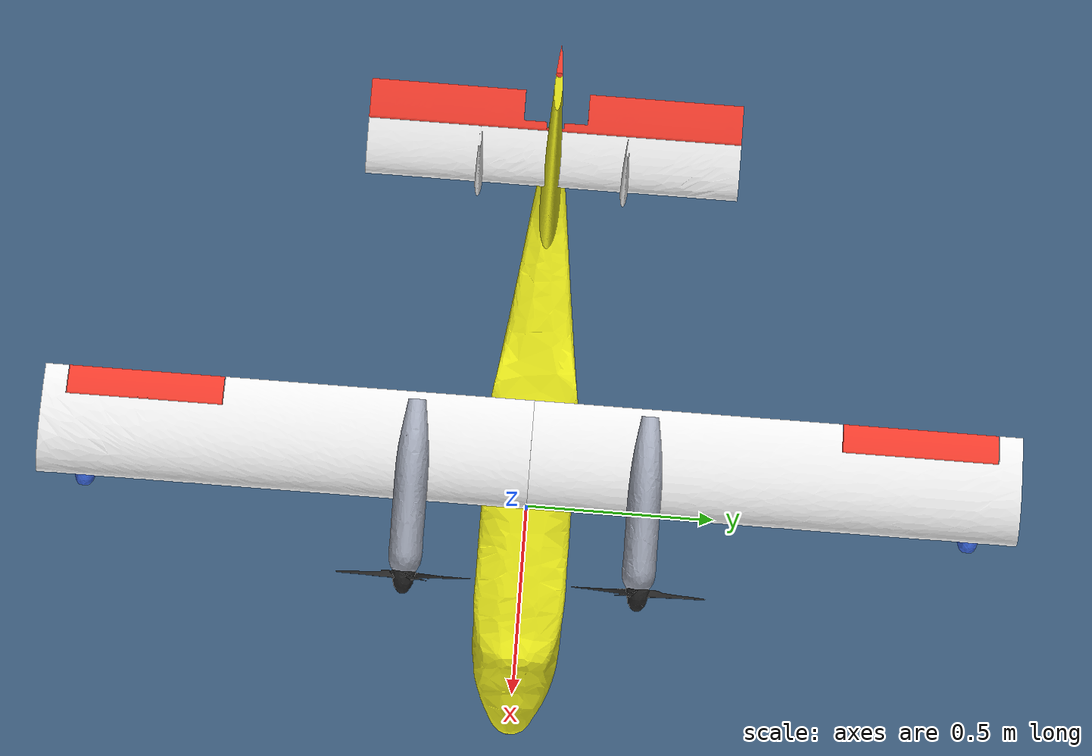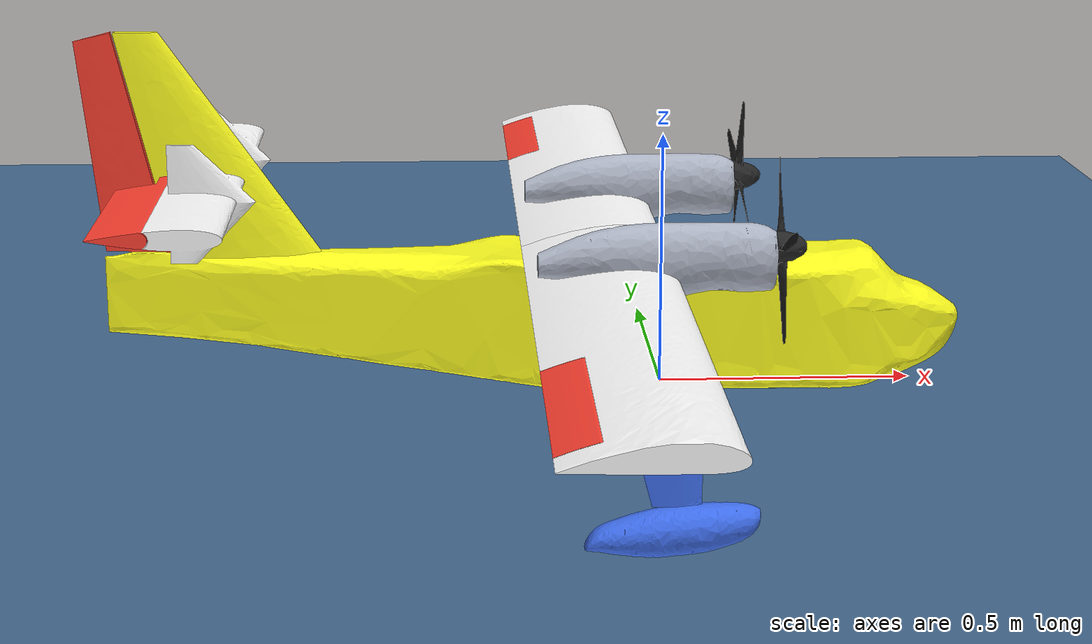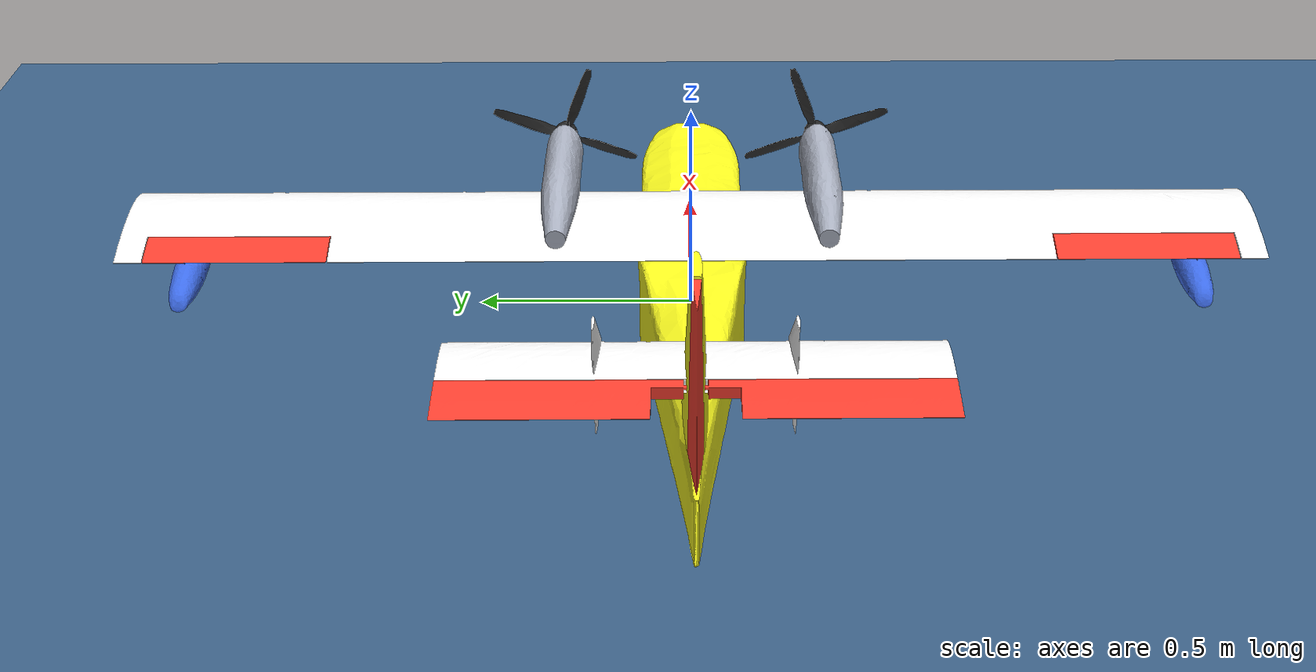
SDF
<?xml version="1.0"?>
<sdf version="1.9">
  <world name="water_cl415">
    <physics name="1ms" type="dart">
      <max_step_size>0.001</max_step_size>
      <real_time_factor>1.0</real_time_factor>
    </physics>
    <gravity>0 0 -9.81</gravity>
    <wind>
      <linear_velocity>0 0 0</linear_velocity>
    </wind>

    <plugin filename="gz-sim-physics-system" name="gz::sim::systems::Physics"/>
    <plugin filename="gz-sim-user-commands-system" name="gz::sim::systems::UserCommands"/>
    <plugin filename="gz-sim-scene-broadcaster-system" name="gz::sim::systems::SceneBroadcaster"/>
    <plugin filename="gz-sim-imu-system" name="gz::sim::systems::Imu"/>
    <plugin filename="gz-sim-buoyancy-system" name="gz::sim::systems::Buoyancy">
      <graded_buoyancy>
        <default_density>1000</default_density>
        <density_change>
          <above_depth>0</above_depth>
          <density>1.225</density>
        </density_change>
      </graded_buoyancy>
    </plugin>

    <scene>
      <ambient>0.6 0.6 0.6 1</ambient>
      <background>0.7 0.8 0.95 1</background>
    </scene>

    <light type="directional" name="sun">
      <cast_shadows>true</cast_shadows>
      <pose>0 0 30 0 0 0</pose>
      <diffuse>0.9 0.9 0.9 1</diffuse>
      <specular>0.2 0.2 0.2 1</specular>
      <direction>-0.4 0.2 -0.9</direction>
    </light>

    <!-- visual only: the water itself is the buoyancy system -->
    <model name="water_surface">
      <static>true</static>
      <pose>0 0 -0.002 0 0 0</pose>
      <link name="link">
        <visual name="surface">
          <geometry>
            <box><size>200 200 0.004</size></box>
          </geometry>
          <material>
            <ambient>0.05 0.25 0.45 1</ambient>
            <diffuse>0.05 0.3 0.55 1</diffuse>
          </material>
          <transparency>0.4</transparency>
        </visual>
      </link>
    </model>
    <include>
      <uri>model://cl415_full</uri>
      <name>cl415</name>
      <pose>0 0 0.29 0 0 0</pose>
    </include>
  </world>
</sdf>

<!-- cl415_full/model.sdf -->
<sdf version='1.11'>
  <model name='cl415'>
    <link name='base_link'>
      <inertial>
        <pose>-0.068479471323888638 1.157110930130461e-06 -0.1051177703273083 0 0 0</pose>
        <mass>10.234999999999999</mass>
        <inertia>
          <ixx>1.1161726540920169</ixx>
          <ixy>-4.6032458373154549e-06</ixy>
          <ixz>0.03066836335247879</ixz>
          <iyy>0.79641183099399082</iyy>
          <iyz>-2.1113177945229111e-06</iyz>
          <izz>1.7147058934209141</izz>
        </inertia>
      </inertial>
      <collision name='base_link_fixed_joint_lump__fuselage_c0_collision'>
        <pose>0.53251000000000004 0 -0.18029100000000001 0 0 0</pose>
        <geometry>
          <box>
            <size>0.12501999999999999 0.11189300000000001 0.14921499999999999</size>
          </box>
        </geometry>
      </collision>
      <collision name='base_link_fixed_joint_lump__fuselage_c1_collision_1'>
        <pose>0.38500000000000001 0 -0.151395 0 0 0</pose>
        <geometry>
          <box>
            <size>0.17000000000000001 0.19908899999999999 0.26514300000000002</size>
          </box>
        </geometry>
      </collision>
      <collision name='base_link_fixed_joint_lump__fuselage_c2_collision_2'>
        <pose>0.079963699999999999 0 -0.16194500000000001 0 0 0</pose>
        <geometry>
          <box>
            <size>0.44007299999999999 0.21010100000000001 0.28918899999999997</size>
          </box>
        </geometry>
      </collision>
      <collision name='base_link_fixed_joint_lump__fuselage_c3_collision_3'>
        <pose>-0.29503600000000002 0 -0.142785 0 0 0</pose>
        <geometry>
          <box>
            <size>0.30992700000000001 0.197964 0.25087100000000001</size>
          </box>
        </geometry>
      </collision>
      <collision name='base_link_fixed_joint_lump__fuselage_c4_collision_4'>
        <pose>-0.59999999999999998 0 -0.123921 0 0 0</pose>
        <geometry>
          <box>
            <size>0.29999999999999999 0.120182 0.21313799999999999</size>
          </box>
        </geometry>
      </collision>
      <collision name='base_link_fixed_joint_lump__fuselage_c5_collision_5'>
        <pose>-0.92124899999999998 0 -0.10417899999999999 0 0 0</pose>
        <geometry>
          <box>
            <size>0.34249800000000002 0.038124199999999997 0.169682</size>
          </box>
        </geometry>
      </collision>
      <collision name='base_link_fixed_joint_lump__h_stab_c0_collision_6'>
        <pose>-0.88500000000000001 0 0.127 0 0 0</pose>
        <geometry>
          <box>
            <size>0.14399999999999999 0.93600000000000005 0.038240000000000003</size>
          </box>
        </geometry>
      </collision>
      <collision name='base_link_fixed_joint_lump__left_float_c0_collision_7'>
        <pose>-0.099890599999999996 1.1516999999999999 -0.14177899999999999 0 0 0</pose>
        <geometry>
          <box>
            <size>0.25748799999999999 0.037082799999999999 0.080418199999999995</size>
          </box>
        </geometry>
      </collision>
      <collision name='base_link_fixed_joint_lump__left_float_c1_collision_8'>
        <pose>-0.10000000000000001 1.1516999999999999 -0.051569499999999997 0 0 0</pose>
        <geometry>
          <box>
            <size>0.080000000000000002 0.0089999999999999993 0.10000000000000001</size>
          </box>
        </geometry>
      </collision>
      <collision name='base_link_fixed_joint_lump__left_nacelle_c0_collision_9'>
        <pose>-0.039742899999999998 0.29730099999999998 0.037859299999999999 0 0 0</pose>
        <geometry>
          <box>
            <size>0.39480500000000002 0.078228300000000001 0.126691</size>
          </box>
        </geometry>
      </collision>
      <collision name='base_link_fixed_joint_lump__left_wing_c0_collision_10'>
        <pose>-0.139351 0.62749999999999995 0.0043729199999999998 0 -0.046251200000000027 0</pose>
        <geometry>
          <box>
            <size>0.27800000000000002 1.2549999999999999 0.047260000000000003</size>
          </box>
        </geometry>
      </collision>
      <collision name='base_link_fixed_joint_lump__right_float_c0_collision_11'>
        <pose>-0.099890599999999996 -1.1516999999999999 -0.14177899999999999 0 0 0</pose>
        <geometry>
          <box>
            <size>0.25748799999999999 0.037082799999999999 0.080418199999999995</size>
          </box>
        </geometry>
      </collision>
      <collision name='base_link_fixed_joint_lump__right_float_c1_collision_12'>
        <pose>-0.10000000000000001 -1.1516999999999999 -0.051569499999999997 0 0 0</pose>
        <geometry>
          <box>
            <size>0.080000000000000002 0.0089999999999999993 0.10000000000000001</size>
          </box>
        </geometry>
      </collision>
      <collision name='base_link_fixed_joint_lump__right_nacelle_c0_collision_13'>
        <pose>-0.039742899999999998 -0.29729899999999998 0.037859299999999999 0 0 0</pose>
        <geometry>
          <box>
            <size>0.39480500000000002 0.078228300000000001 0.126691</size>
          </box>
        </geometry>
      </collision>
      <collision name='base_link_fixed_joint_lump__right_wing_c0_collision_14'>
        <pose>-0.139351 -0.62749999999999995 0.0043729199999999998 0 -0.046251200000000027 0</pose>
        <geometry>
          <box>
            <size>0.27800000000000002 1.2549999999999999 0.047260000000000003</size>
          </box>
        </geometry>
      </collision>
      <collision name='base_link_fixed_joint_lump__v_stab_c0_collision_15'>
        <pose>-0.86274300000000004 2.9923499999999999e-05 0.19685 0 0 0</pose>
        <geometry>
          <box>
            <size>0.35145500000000002 0.047060900000000003 0.40170600000000001</size>
          </box>
        </geometry>
      </collision>
      <visual name='base_link_fixed_joint_lump__fuselage_visual'>
        <pose>0 0 0 0 0 0</pose>
        <geometry>
          <mesh>
            <scale>1 1 1</scale>
            <uri>model://cl415_description/meshes/fuselage.stl</uri>
          </mesh>
        </geometry>
        <material>
          <diffuse>1 1 0.125 1</diffuse>
          <ambient>1 1 0.125 1</ambient>
        </material>
      </visual>
      <visual name='base_link_fixed_joint_lump__h_stab_visual_1'>
        <pose>0 0 0 0 0 0</pose>
        <geometry>
          <mesh>
            <scale>1 1 1</scale>
            <uri>model://cl415_description/meshes/h_stab.stl</uri>
          </mesh>
        </geometry>
        <material>
          <diffuse>1 1 1 1</diffuse>
          <ambient>1 1 1 1</ambient>
        </material>
      </visual>
      <visual name='base_link_fixed_joint_lump__left_float_visual_2'>
        <pose>0 0 0 0 0 0</pose>
        <geometry>
          <mesh>
            <scale>1 1 1</scale>
            <uri>model://cl415_description/meshes/left_float.stl</uri>
          </mesh>
        </geometry>
        <material>
          <diffuse>0.25 0.4375 0.9375 1</diffuse>
          <ambient>0.25 0.4375 0.9375 1</ambient>
        </material>
      </visual>
      <visual name='base_link_fixed_joint_lump__left_nacelle_visual_3'>
        <pose>0 0 0 0 0 0</pose>
        <geometry>
          <mesh>
            <scale>1 1 1</scale>
            <uri>model://cl415_description/meshes/left_nacelle.stl</uri>
          </mesh>
        </geometry>
        <material>
          <diffuse>0.6875 0.712499976 0.775000036 1</diffuse>
          <ambient>0.6875 0.712499976 0.775000036 1</ambient>
        </material>
      </visual>
      <visual name='base_link_fixed_joint_lump__left_wing_visual_4'>
        <pose>0 0 0 0 0 0</pose>
        <geometry>
          <mesh>
            <scale>1 1 1</scale>
            <uri>model://cl415_description/meshes/left_wing.stl</uri>
          </mesh>
        </geometry>
        <material>
          <diffuse>1 1 1 1</diffuse>
          <ambient>1 1 1 1</ambient>
        </material>
      </visual>
      <visual name='base_link_fixed_joint_lump__right_float_visual_5'>
        <pose>0 0 0 0 0 0</pose>
        <geometry>
          <mesh>
            <scale>1 1 1</scale>
            <uri>model://cl415_description/meshes/right_float.stl</uri>
          </mesh>
        </geometry>
        <material>
          <diffuse>0.25 0.4375 0.9375 1</diffuse>
          <ambient>0.25 0.4375 0.9375 1</ambient>
        </material>
      </visual>
      <visual name='base_link_fixed_joint_lump__right_nacelle_visual_6'>
        <pose>0 0 0 0 0 0</pose>
        <geometry>
          <mesh>
            <scale>1 1 1</scale>
            <uri>model://cl415_description/meshes/right_nacelle.stl</uri>
          </mesh>
        </geometry>
        <material>
          <diffuse>0.6875 0.712499976 0.775000036 1</diffuse>
          <ambient>0.6875 0.712499976 0.775000036 1</ambient>
        </material>
      </visual>
      <visual name='base_link_fixed_joint_lump__right_wing_visual_7'>
        <pose>0 0 0 0 0 0</pose>
        <geometry>
          <mesh>
            <scale>1 1 1</scale>
            <uri>model://cl415_description/meshes/right_wing.stl</uri>
          </mesh>
        </geometry>
        <material>
          <diffuse>1 1 1 1</diffuse>
          <ambient>1 1 1 1</ambient>
        </material>
      </visual>
      <visual name='base_link_fixed_joint_lump__v_stab_visual_8'>
        <pose>0 0 0 0 0 0</pose>
        <geometry>
          <mesh>
            <scale>1 1 1</scale>
            <uri>model://cl415_description/meshes/v_stab.stl</uri>
          </mesh>
        </geometry>
        <material>
          <diffuse>1 1 0.125 1</diffuse>
          <ambient>1 1 0.125 1</ambient>
        </material>
      </visual>
      <visual name='base_link_fixed_joint_lump__water_tank_visual_9'>
        <pose>0 0 0 0 0 0</pose>
        <geometry>
          <mesh>
            <scale>1 1 1</scale>
            <uri>model://cl415_description/meshes/water_tank.stl</uri>
          </mesh>
        </geometry>
        <material>
          <diffuse>0.875 1 1 1</diffuse>
          <ambient>0.875 1 1 1</ambient>
        </material>
      </visual>
      <sensor name='imu' type='imu'>
        <always_on>true</always_on>
        <update_rate>200</update_rate>
        <topic>/cl415/imu</topic>
        <imu/>
      </sensor>
    </link>
    <joint name='elevator_joint' type='revolute'>
      <pose relative_to='base_link'>-0.95699999999999996 0 0.127 0 0 0</pose>
      <parent>base_link</parent>
      <child>elevator</child>
      <axis>
        <xyz>0 -1 0</xyz>
        <limit>
          <lower>-0.436332</lower>
          <upper>0.436332</upper>
          <effort>2</effort>
          <velocity>8.6999999999999993</velocity>
        </limit>
        <dynamics>
          <damping>0.001</damping>
          <friction>0</friction>
          <spring_reference>0</spring_reference>
          <spring_stiffness>0</spring_stiffness>
        </dynamics>
      </axis>
    </joint>
    <link name='elevator'>
      <pose relative_to='elevator_joint'>0 0 0 0 0 0</pose>
      <inertial>
        <pose>-0.025073100000000001 1.80306e-07 1.08467e-08 0 0 0</pose>
        <mass>0.059999999999999998</mass>
        <inertia>
          <ixx>0.0049509999999999997</ixx>
          <ixy>-2.74619e-11</ixy>
          <ixz>6.4644800000000001e-11</ixz>
          <iyy>4.2833200000000002e-05</iyy>
          <iyz>1.9838599999999999e-10</iyz>
          <izz>0.0049888900000000002</izz>
        </inertia>
      </inertial>
      <collision name='elevator_c0_collision'>
        <pose>-0.040276300000000001 -2.7755599999999997e-17 -1.3877799999999999e-17 0 0 0</pose>
        <geometry>
          <box>
            <size>0.109447 0.93600000000000005 0.028952100000000001</size>
          </box>
        </geometry>
      </collision>
      <visual name='elevator_visual'>
        <pose>0 0 0 0 0 0</pose>
        <geometry>
          <mesh>
            <scale>1 1 1</scale>
            <uri>model://cl415_description/meshes/elevator.stl</uri>
          </mesh>
        </geometry>
        <material>
          <diffuse>1 0.25 0.187500015 1</diffuse>
          <ambient>1 0.25 0.187500015 1</ambient>
        </material>
      </visual>
    </link>
    <joint name='left_propeller_joint' type='revolute'>
      <pose relative_to='base_link'>0.1895 0.29730000000000001 0.060600000000000001 3.1415926535897931 1.5707926536359933 3.1415926535897931</pose>
      <parent>base_link</parent>
      <child>left_propeller</child>
      <axis>
        <xyz>0 0 1</xyz>
        <limit>
          <effort>10</effort>
          <velocity>200</velocity>
          <lower>-inf</lower>
          <upper>inf</upper>
        </limit>
        <dynamics>
          <spring_reference>0</spring_reference>
          <spring_stiffness>0</spring_stiffness>
        </dynamics>
      </axis>
    </joint>
    <link name='left_propeller'>
      <pose relative_to='left_propeller_joint'>0 0 0 0 0 0</pose>
      <inertial>
        <pose>-9.9280700000000003e-07 2.05844e-07 0.0079392899999999999 0 0 0</pose>
        <mass>0.050000000000000003</mass>
        <inertia>
          <ixx>6.4521699999999996e-05</ixx>
          <ixy>-4.1732299999999997e-11</ixy>
          <ixz>-7.4176499999999997e-10</ixz>
          <iyy>6.4524599999999995e-05</iyy>
          <iyz>1.94693e-10</iyz>
          <izz>0.000111037</izz>
        </inertia>
      </inertial>
      <collision name='left_propeller_c0_collision'>
        <pose>0 0 0.01745 0 0 0</pose>
        <geometry>
          <cylinder>
            <length>0.058900000000000001</length>
            <radius>0.029600000000000001</radius>
          </cylinder>
        </geometry>
      </collision>
      <visual name='left_propeller_visual'>
        <pose>0 0 0 0 0 0</pose>
        <geometry>
          <mesh>
            <scale>1 1 1</scale>
            <uri>model://cl415_description/meshes/left_propeller.stl</uri>
          </mesh>
        </geometry>
        <material>
          <diffuse>0.149999991 0.149999991 0.149999991 1</diffuse>
          <ambient>0.149999991 0.149999991 0.149999991 1</ambient>
        </material>
      </visual>
    </link>
    <joint name='left_aileron_joint' type='revolute'>
      <pose relative_to='base_link'>-0.208616 0.99399999999999999 -0.00231168 0 0 0</pose>
      <parent>base_link</parent>
      <child>left_aileron</child>
      <axis>
        <xyz>0 -1 0</xyz>
        <limit>
          <lower>-0.436332</lower>
          <upper>0.436332</upper>
          <effort>2</effort>
          <velocity>8.6999999999999993</velocity>
        </limit>
        <dynamics>
          <damping>0.001</damping>
          <friction>0</friction>
          <spring_reference>0</spring_reference>
          <spring_stiffness>0</spring_stiffness>
        </dynamics>
      </axis>
    </joint>
    <link name='left_aileron'>
      <pose relative_to='left_aileron_joint'>0 0 0 0 0 0</pose>
      <inertial>
        <pose>-0.0183503 -1.25899e-13 -0.0025524900000000001 0 0 0</pose>
        <mass>0.035000000000000003</mass>
        <inertia>
          <ixx>0.00046329200000000002</ixx>
          <ixy>0</ixy>
          <ixz>-1.74855e-06</ixz>
          <iyy>1.44088e-05</iyy>
          <iyz>0</iyz>
          <izz>0.00047513999999999998</izz>
        </inertia>
      </inertial>
      <collision name='left_aileron_c0_collision'>
        <pose>-0.028365999999999999 -3.7025900000000001e-14 0.00013086799999999999 0 0 0</pose>
        <geometry>
          <box>
            <size>0.081617599999999998 0.39800000000000002 0.024963699999999998</size>
          </box>
        </geometry>
      </collision>
      <visual name='left_aileron_visual'>
        <pose>0 0 0 0 0 0</pose>
        <geometry>
          <mesh>
            <scale>1 1 1</scale>
            <uri>model://cl415_description/meshes/left_aileron.stl</uri>
          </mesh>
        </geometry>
        <material>
          <diffuse>1 0.25 0.187500015 1</diffuse>
          <ambient>1 0.25 0.187500015 1</ambient>
        </material>
      </visual>
    </link>
    <joint name='right_propeller_joint' type='revolute'>
      <pose relative_to='base_link'>0.1895 -0.29730000000000001 0.060600000000000001 3.1415926535897931 1.5707926536359933 3.1415926535897931</pose>
      <parent>base_link</parent>
      <child>right_propeller</child>
      <axis>
        <xyz>0 0 1</xyz>
        <limit>
          <effort>10</effort>
          <velocity>200</velocity>
          <lower>-inf</lower>
          <upper>inf</upper>
        </limit>
        <dynamics>
          <spring_reference>0</spring_reference>
          <spring_stiffness>0</spring_stiffness>
        </dynamics>
      </axis>
    </joint>
    <link name='right_propeller'>
      <pose relative_to='right_propeller_joint'>0 0 0 0 0 0</pose>
      <inertial>
        <pose>-2.1925999999999999e-07 -2.9518399999999998e-07 0.0079393599999999995 0 0 0</pose>
        <mass>0.050000000000000003</mass>
        <inertia>
          <ixx>6.4521800000000003e-05</ixx>
          <ixy>1.3965499999999999e-09</ixy>
          <ixz>-2.5966100000000002e-10</ixz>
          <iyy>6.4533800000000002e-05</iyy>
          <iyz>-1.6273500000000001e-10</iyz>
          <izz>0.00011104599999999999</izz>
        </inertia>
      </inertial>
      <collision name='right_propeller_c0_collision'>
        <pose>0 0 0.01745 0 0 0</pose>
        <geometry>
          <cylinder>
            <length>0.058900000000000001</length>
            <radius>0.029600000000000001</radius>
          </cylinder>
        </geometry>
      </collision>
      <visual name='right_propeller_visual'>
        <pose>0 0 0 0 0 0</pose>
        <geometry>
          <mesh>
            <scale>1 1 1</scale>
            <uri>model://cl415_description/meshes/right_propeller.stl</uri>
          </mesh>
        </geometry>
        <material>
          <diffuse>0.149999991 0.149999991 0.149999991 1</diffuse>
          <ambient>0.149999991 0.149999991 0.149999991 1</ambient>
        </material>
      </visual>
    </link>
    <joint name='right_aileron_joint' type='revolute'>
      <pose relative_to='base_link'>-0.208616 -0.99399999999999999 -0.00231168 0 0 0</pose>
      <parent>base_link</parent>
      <child>right_aileron</child>
      <axis>
        <xyz>0 -1 0</xyz>
        <limit>
          <lower>-0.436332</lower>
          <upper>0.436332</upper>
          <effort>2</effort>
          <velocity>8.6999999999999993</velocity>
        </limit>
        <dynamics>
          <damping>0.001</damping>
          <friction>0</friction>
          <spring_reference>0</spring_reference>
          <spring_stiffness>0</spring_stiffness>
        </dynamics>
      </axis>
    </joint>
    <link name='right_aileron'>
      <pose relative_to='right_aileron_joint'>0 0 0 0 0 0</pose>
      <inertial>
        <pose>-0.0183503 -1.11577e-13 -0.0025524900000000001 0 0 0</pose>
        <mass>0.035000000000000003</mass>
        <inertia>
          <ixx>0.00046329200000000002</ixx>
          <ixy>0</ixy>
          <ixz>-1.74855e-06</ixz>
          <iyy>1.44088e-05</iyy>
          <iyz>0</iyz>
          <izz>0.00047513999999999998</izz>
        </inertia>
      </inertial>
      <collision name='right_aileron_c0_collision'>
        <pose>-0.028365999999999999 -5.5511199999999995e-17 0.00013086799999999999 0 0 0</pose>
        <geometry>
          <box>
            <size>0.081617599999999998 0.39800000000000002 0.024963699999999998</size>
          </box>
        </geometry>
      </collision>
      <visual name='right_aileron_visual'>
        <pose>0 0 0 0 0 0</pose>
        <geometry>
          <mesh>
            <scale>1 1 1</scale>
            <uri>model://cl415_description/meshes/right_aileron.stl</uri>
          </mesh>
        </geometry>
        <material>
          <diffuse>1 0.25 0.187500015 1</diffuse>
          <ambient>1 0.25 0.187500015 1</ambient>
        </material>
      </visual>
    </link>
    <joint name='rudder_joint' type='revolute'>
      <pose relative_to='base_link'>-0.95599999999999996 0 -0.017299999999999999 0 0 0</pose>
      <parent>base_link</parent>
      <child>rudder</child>
      <axis>
        <xyz>0.23288200000000001 0 -0.97250499999999995</xyz>
        <limit>
          <lower>-0.52359900000000004</lower>
          <upper>0.52359900000000004</upper>
          <effort>2</effort>
          <velocity>8.6999999999999993</velocity>
        </limit>
        <dynamics>
          <damping>0.001</damping>
          <friction>0</friction>
          <spring_reference>0</spring_reference>
          <spring_stiffness>0</spring_stiffness>
        </dynamics>
      </axis>
    </joint>
    <link name='rudder'>
      <pose relative_to='rudder_joint'>0 0 0 0 0 0</pose>
      <inertial>
        <pose>-0.080166600000000005 1.2362500000000001e-08 0.176709 0 0 0</pose>
        <mass>0.035000000000000003</mass>
        <inertia>
          <ixx>0.00047898199999999998</ixx>
          <ixy>-2.5839099999999998e-10</ixy>
          <ixz>9.1311999999999996e-05</ixz>
          <iyy>0.000520003</iyy>
          <iyz>-7.29896e-11</iyz>
          <izz>4.3085399999999999e-05</izz>
        </inertia>
      </inertial>
      <collision name='rudder_c0_collision'>
        <pose>-0.088195800000000005 -1.73472e-18 0.21965000000000001 0 0 0</pose>
        <geometry>
          <box>
            <size>0.17399700000000001 0.031550700000000001 0.42930000000000001</size>
          </box>
        </geometry>
      </collision>
      <visual name='rudder_visual'>
        <pose>0 0 0 0 0 0</pose>
        <geometry>
          <mesh>
            <scale>1 1 1</scale>
            <uri>model://cl415_description/meshes/rudder.stl</uri>
          </mesh>
        </geometry>
        <material>
          <diffuse>1 0.25 0.187500015 1</diffuse>
          <ambient>1 0.25 0.187500015 1</ambient>
        </material>
      </visual>
    </link>
    <plugin name='gz::sim::systems::LiftDrag' filename='gz-sim-lift-drag-system'>
      <link_name>base_link</link_name>
      <air_density>1.225</air_density>
      <area>0.349018</area>
      <cp>-0.0694257 0.6275 -0.00321331</cp>
      <forward>1 0 0</forward>
      <upward>0 0 1</upward>
      <a0>0.118761</a0>
      <cla>4.84994</cla>
      <cda>0.427176</cda>
      <cma>0</cma>
      <alpha_stall>0.276698</alpha_stall>
      <cla_stall>-1.85638</cla_stall>
      <cda_stall>1.73344</cda_stall>
      <cma_stall>0</cma_stall>
      <control_joint_name>left_aileron_joint</control_joint_name>
      <control_joint_rad_to_cl>1.49813</control_joint_rad_to_cl>
      <cm_delta>-0.0520359</cm_delta>
    </plugin>
    <plugin name='gz::sim::systems::LiftDrag' filename='gz-sim-lift-drag-system'>
      <link_name>base_link</link_name>
      <air_density>1.225</air_density>
      <area>0.349018</area>
      <cp>-0.0694257 -0.6275 -0.00321331</cp>
      <forward>1 0 0</forward>
      <upward>0 0 1</upward>
      <a0>0.118761</a0>
      <cla>4.84994</cla>
      <cda>0.427176</cda>
      <cma>0</cma>
      <alpha_stall>0.276698</alpha_stall>
      <cla_stall>-1.85638</cla_stall>
      <cda_stall>1.73344</cda_stall>
      <cma_stall>0</cma_stall>
      <control_joint_name>right_aileron_joint</control_joint_name>
      <control_joint_rad_to_cl>1.49813</control_joint_rad_to_cl>
      <cm_delta>-0.0520359</cm_delta>
    </plugin>
    <plugin name='gz::sim::systems::LiftDrag' filename='gz-sim-lift-drag-system'>
      <link_name>base_link</link_name>
      <air_density>1.225</air_density>
      <area>0.223704</area>
      <cp>-0.87275 0 0.127</cp>
      <forward>1 0 0</forward>
      <upward>0 0 1</upward>
      <a0>-0.0617526</a0>
      <cla>2.2158</cla>
      <cda>0.215845</cda>
      <cma>0</cma>
      <alpha_stall>0.478461</alpha_stall>
      <cla_stall>-1.1079</cla_stall>
      <cda_stall>1</cda_stall>
      <cma_stall>0</cma_stall>
      <control_joint_name>elevator_joint</control_joint_name>
      <control_joint_rad_to_cl>2.14528</control_joint_rad_to_cl>
      <cm_delta>-0.0974998</cm_delta>
    </plugin>
    <plugin name='gz::sim::systems::LiftDrag' filename='gz-sim-lift-drag-system'>
      <link_name>base_link</link_name>
      <air_density>1.225</air_density>
      <area>0.174408</area>
      <cp>-0.879768 0 0.155968</cp>
      <forward>1 0 0</forward>
      <upward>0 1 0</upward>
      <a0>0</a0>
      <cla>2.4169</cla>
      <cda>0.208619</cda>
      <cma>0</cma>
      <alpha_stall>0.401426</alpha_stall>
      <cla_stall>-1.20845</cla_stall>
      <cda_stall>1</cda_stall>
      <cma_stall>0</cma_stall>
      <control_joint_name>rudder_joint</control_joint_name>
      <control_joint_rad_to_cl>-1.2843</control_joint_rad_to_cl>
      <cm_delta>0.109399</cm_delta>
    </plugin>
    <plugin name='gz::sim::systems::MulticopterMotorModel' filename='gz-sim-multicopter-motor-model-system'>
      <robotNamespace>cl415</robotNamespace>
      <jointName>left_propeller_joint</jointName>
      <linkName>left_propeller</linkName>
      <turningDirection>ccw</turningDirection>
      <timeConstantUp>0.0125</timeConstantUp>
      <timeConstantDown>0.025</timeConstantDown>
      <maxRotVelocity>890.118</maxRotVelocity>
      <motorConstant>4.2079e-05</motorConstant>
      <momentConstant>0.0299455</momentConstant>
      <commandSubTopic>command/motor_speed</commandSubTopic>
      <motorNumber>0</motorNumber>
      <rotorDragCoefficient>0.0001</rotorDragCoefficient>
      <rollingMomentCoefficient>1e-06</rollingMomentCoefficient>
      <rotorVelocitySlowdownSim>10</rotorVelocitySlowdownSim>
      <motorType>velocity</motorType>
    </plugin>
    <plugin name='gz::sim::systems::MulticopterMotorModel' filename='gz-sim-multicopter-motor-model-system'>
      <robotNamespace>cl415</robotNamespace>
      <jointName>right_propeller_joint</jointName>
      <linkName>right_propeller</linkName>
      <turningDirection>cw</turningDirection>
      <timeConstantUp>0.0125</timeConstantUp>
      <timeConstantDown>0.025</timeConstantDown>
      <maxRotVelocity>890.118</maxRotVelocity>
      <motorConstant>4.2079e-05</motorConstant>
      <momentConstant>0.0299455</momentConstant>
      <commandSubTopic>command/motor_speed</commandSubTopic>
      <motorNumber>1</motorNumber>
      <rotorDragCoefficient>0.0001</rotorDragCoefficient>
      <rollingMomentCoefficient>1e-06</rollingMomentCoefficient>
      <rotorVelocitySlowdownSim>10</rotorVelocitySlowdownSim>
      <motorType>velocity</motorType>
    </plugin>
    <plugin name='gz::sim::systems::JointPositionController' filename='gz-sim-joint-position-controller-system'>
      <joint_name>left_aileron_joint</joint_name>
      <topic>/cl415/cmd/left_aileron</topic>
      <p_gain>0.1691</p_gain>
      <i_gain>0.5411</i_gain>
      <d_gain>0.004228</d_gain>
      <i_max>0.15</i_max>
      <i_min>-0.15</i_min>
      <cmd_max>0.5</cmd_max>
      <cmd_min>-0.5</cmd_min>
    </plugin>
    <plugin name='gz::sim::systems::JointPositionController' filename='gz-sim-joint-position-controller-system'>
      <joint_name>right_aileron_joint</joint_name>
      <topic>/cl415/cmd/right_aileron</topic>
      <p_gain>0.1691</p_gain>
      <i_gain>0.5411</i_gain>
      <d_gain>0.004228</d_gain>
      <i_max>0.15</i_max>
      <i_min>-0.15</i_min>
      <cmd_max>0.5</cmd_max>
      <cmd_min>-0.5</cmd_min>
    </plugin>
    <plugin name='gz::sim::systems::JointPositionController' filename='gz-sim-joint-position-controller-system'>
      <joint_name>elevator_joint</joint_name>
      <topic>/cl415/cmd/elevator</topic>
      <p_gain>0.5155</p_gain>
      <i_gain>1.65</i_gain>
      <d_gain>0.01289</d_gain>
      <i_max>0.15</i_max>
      <i_min>-0.15</i_min>
      <cmd_max>0.5</cmd_max>
      <cmd_min>-0.5</cmd_min>
    </plugin>
    <plugin name='gz::sim::systems::JointPositionController' filename='gz-sim-joint-position-controller-system'>
      <joint_name>rudder_joint</joint_name>
      <topic>/cl415/cmd/rudder</topic>
      <p_gain>0.4659</p_gain>
      <i_gain>1.491</i_gain>
      <d_gain>0.01165</d_gain>
      <i_max>0.15</i_max>
      <i_min>-0.15</i_min>
      <cmd_max>0.5</cmd_max>
      <cmd_min>-0.5</cmd_min>
    </plugin>
    <plugin name='gz::sim::systems::JointStatePublisher' filename='gz-sim-joint-state-publisher-system'>
      <topic>/cl415/joint_states</topic>
    </plugin>
    <plugin name='gz::sim::systems::OdometryPublisher' filename='gz-sim-odometry-publisher-system'>
      <odom_frame>odom</odom_frame>
      <robot_base_frame>base_link</robot_base_frame>
      <dimensions>3</dimensions>
      <odom_publish_frequency>50</odom_publish_frequency>
      <odom_topic>/cl415/odometry</odom_topic>
      <tf_topic>/cl415/tf</tf_topic>
    </plugin>
    <frame name='fuselage_joint' attached_to='base_link'>
      <pose>0 0 0 0 0 0</pose>
    </frame>
    <frame name='fuselage' attached_to='fuselage_joint'>
      <pose>0 0 0 0 0 0</pose>
    </frame>
    <frame name='h_stab_joint' attached_to='base_link'>
      <pose>0 0 0 0 0 0</pose>
    </frame>
    <frame name='h_stab' attached_to='h_stab_joint'>
      <pose>0 0 0 0 0 0</pose>
    </frame>
    <frame name='left_float_joint' attached_to='base_link'>
      <pose>0 0 0 0 0 0</pose>
    </frame>
    <frame name='left_float' attached_to='left_float_joint'>
      <pose>0 0 0 0 0 0</pose>
    </frame>
    <frame name='left_nacelle_joint' attached_to='base_link'>
      <pose>0 0 0 0 0 0</pose>
    </frame>
    <frame name='left_nacelle' attached_to='left_nacelle_joint'>
      <pose>0 0 0 0 0 0</pose>
    </frame>
    <frame name='left_wing_joint' attached_to='base_link'>
      <pose>0 0 0 0 0 0</pose>
    </frame>
    <frame name='left_wing' attached_to='left_wing_joint'>
      <pose>0 0 0 0 0 0</pose>
    </frame>
    <frame name='right_float_joint' attached_to='base_link'>
      <pose>0 0 0 0 0 0</pose>
    </frame>
    <frame name='right_float' attached_to='right_float_joint'>
      <pose>0 0 0 0 0 0</pose>
    </frame>
    <frame name='right_nacelle_joint' attached_to='base_link'>
      <pose>0 0 0 0 0 0</pose>
    </frame>
    <frame name='right_nacelle' attached_to='right_nacelle_joint'>
      <pose>0 0 0 0 0 0</pose>
    </frame>
    <frame name='right_wing_joint' attached_to='base_link'>
      <pose>0 0 0 0 0 0</pose>
    </frame>
    <frame name='right_wing' attached_to='right_wing_joint'>
      <pose>0 0 0 0 0 0</pose>
    </frame>
    <frame name='v_stab_joint' attached_to='base_link'>
      <pose>0 0 0 0 0 0</pose>
    </frame>
    <frame name='v_stab' attached_to='v_stab_joint'>
      <pose>0 0 0 0 0 0</pose>
    </frame>
    <frame name='water_tank_joint' attached_to='base_link'>
      <pose>0 0 0 0 0 0</pose>
    </frame>
    <frame name='water_tank' attached_to='water_tank_joint'>
      <pose>0 0 0 0 0 0</pose>
    </frame>
  </model>
</sdf>
